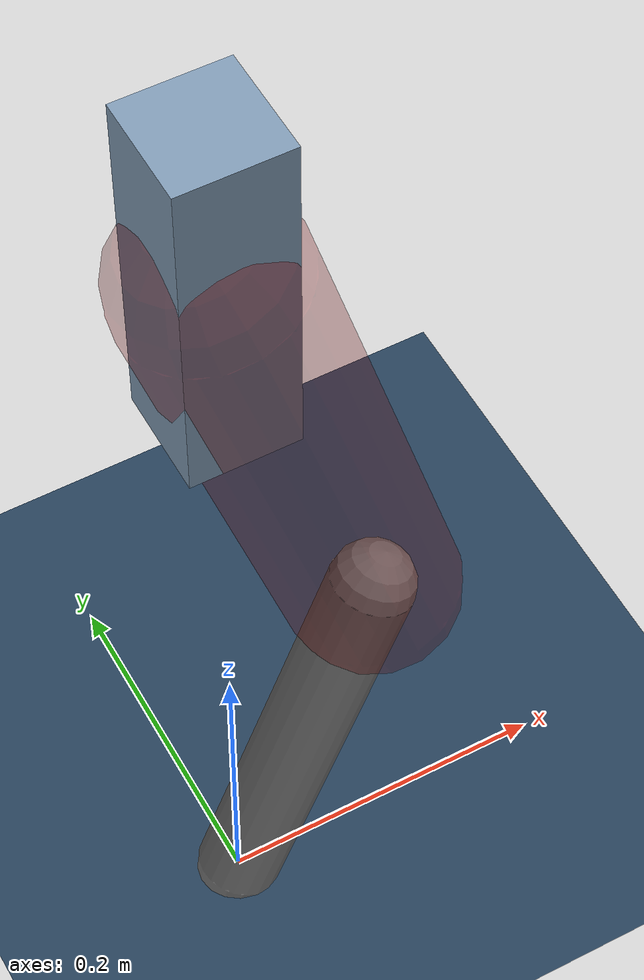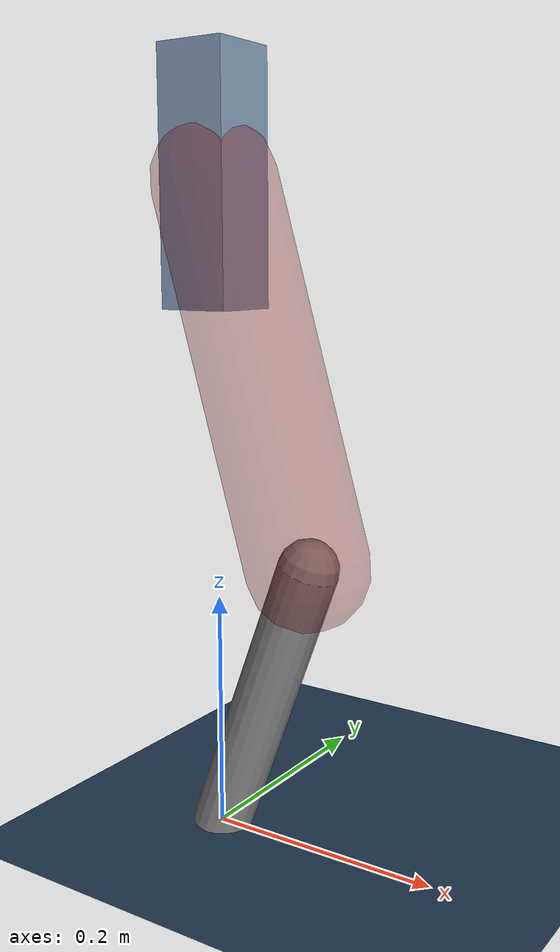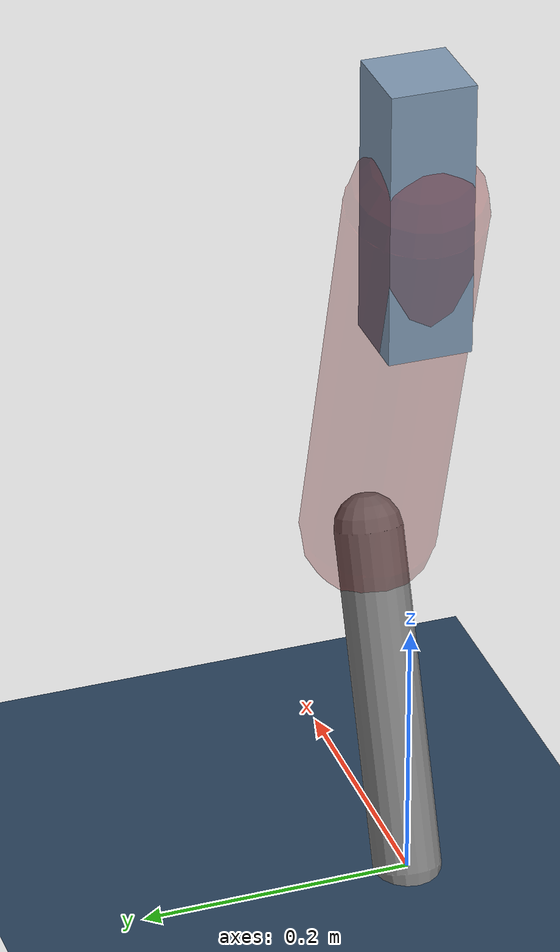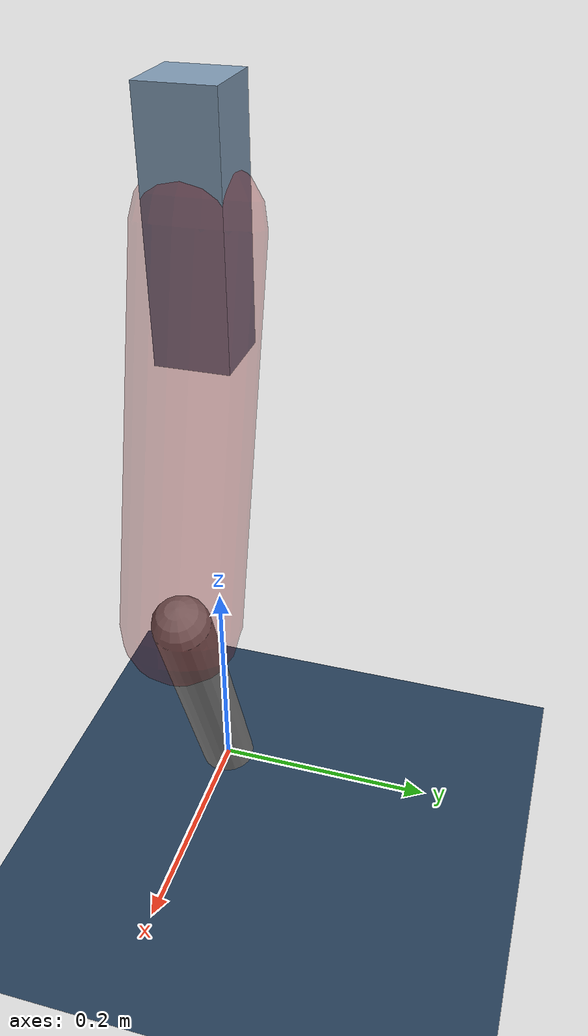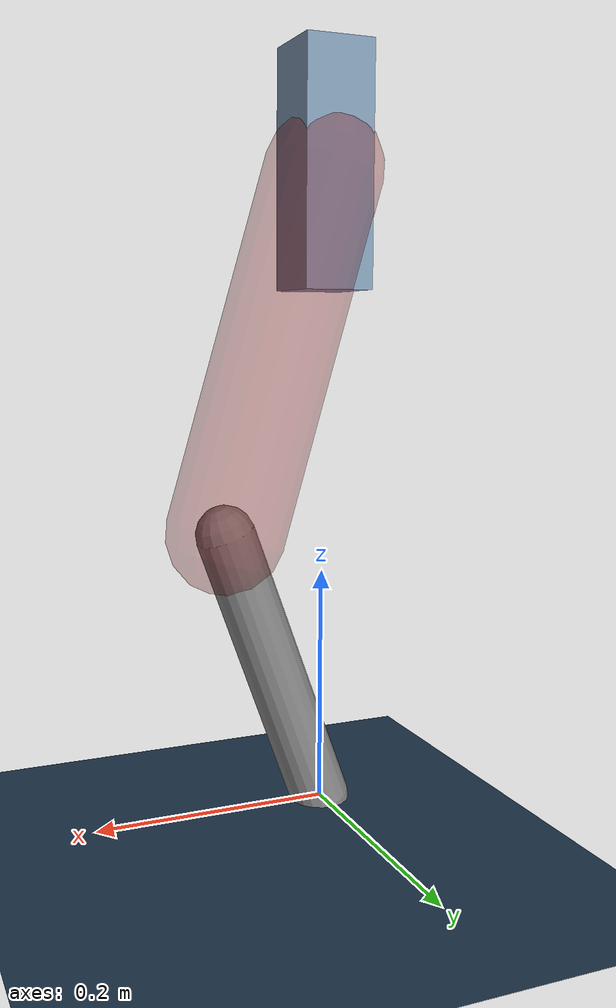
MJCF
<mujoco model="Hopper2D">
	<compiler inertiafromgeom="true" angle="radian" />
	<option timestep="0.001" integrator="implicit" cone="elliptic" solver="Newton" tolerance="1e-10" />

	<default>
		<geom contype="1" conaffinity="1" condim="3" friction="2 0.005 0.0001" solref="0.005 1" />
		<joint limited="true" damping="0.1" />
	</default>

	<asset>
		<texture name="skybox" type="skybox" builtin="gradient" rgb1=".4 .6 .8" rgb2="0 0 0" width="800" height="800" />
		<texture name="grid" type="2d" builtin="checker" rgb1=".1 .2 .3" rgb2=".2 .3 .4" width="300" height="300" mark="edge" markrgb=".2 .3 .4" />
		<material name="ground" texture="grid" texrepeat="1 1" texuniform="true" reflectance="0.1" />
		<material name="leg" rgba="0.5 0.6 0.7 1" />
	</asset>

	<worldbody>

		<geom name="floor" type="plane" size="5 5 0.25" material="ground" />

		<light directional="false" diffuse="0.8 0.8 0.8" specular="0.3 0.3 0.3" pos="0 0 2" dir="0 0 -1" />
		<light mode="targetbodycom" target="base" directional="false" diffuse="0.8 0.8 0.8" specular="0.3 0.3 0.3" pos="0 0 2" dir="0 0 -1" />

		<camera name="fixed" pos="0 -2 1" xyaxes="1 0 0 0 0 1" />
		<camera name="tracking" mode="trackcom" pos="0 -3 1" />

		<body name="root" pos="0 0 0.5380593742224308">
			<joint name="slide_x" type="slide" axis="1 0 0" range="-100 100" />
			<joint name="slide_z" type="slide" axis="0 0 1" range="0 10" />

			<body name="base" pos="0 0 0">
				<geom name="torso" type="box" size="0.03 0.03 0.1" mass="2.523" material="leg" />

				<body name="link1" pos="0 0 0" euler="0 1.2864956643031469 0">
					<joint type="hinge" axis="0 -1 0" pos="0 0 0" name="hinge1" limited="true" range="-3.14 3.14" stiffness="0" damping="0.1" />
					<geom name="thigh" type="capsule" fromto="0 0 0 0.31355142881117143 0 0" size="0.05" rgba="0.5 0 0 0.3" mass="1.0255888577901628" />

					<body name="link2" pos="0.31355142881117143 0 0" euler="0 0.6395035314360525 0">
						<joint type="hinge" axis="0 -1 0" pos="0 0 0" name="hinge2" limited="true" range="-3.14 3.14" stiffness="0" damping="0.1" />
						<geom name="shank" type="capsule" fromto="0 0 0 0.2528803268167388 0 0" size="0.025" mass="0.444904261453391" />

					</body>
				</body>
			</body>
		</body>
	</worldbody>

	<actuator>
		<motor name="torque1" joint="hinge1" ctrlrange="-65.38942203219942 65.38942203219942" ctrllimited="true" gear="1" />
		<motor name="torque2" joint="hinge2" ctrlrange="-118.59111859145214 118.59111859145214" ctrllimited="true" gear="1" />
	</actuator>
</mujoco>
